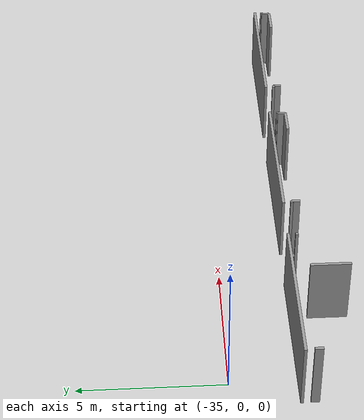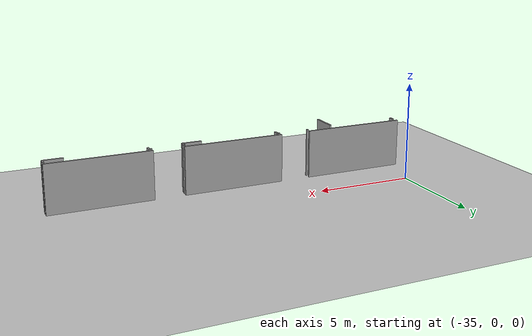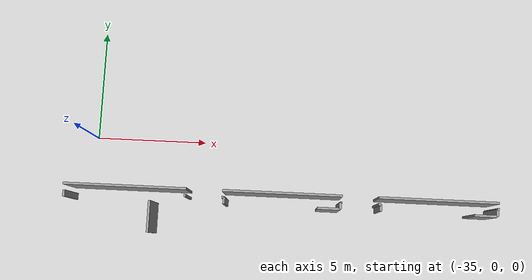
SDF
<sdf version="1.6">
 <world name="default">
  <model name="ground_plane">
   <static>1</static>
   <link name="link">
    <collision name="collision">
     <geometry><plane><normal>0 0 1</normal><size>100 100</size></plane></geometry>
     <surface><friction><ode><mu>100</mu><mu2>50</mu2></ode></friction></surface>
    </collision>
    <visual name="visual">
     <cast_shadows>0</cast_shadows>
     <geometry><plane><normal>0 0 1</normal><size>100 100</size></plane></geometry>
     <material>
      <script><uri>file://media/materials/scripts/gazebo.material</uri><name>Gazebo/Grey</name></script>
     </material>
    </visual>
   </link>
  </model>
  <model name="50045369">
   <static>1</static>
   <link name="Wall_5">
    <collision name="Wall_5_Collision">
     <geometry><box><size>0.286740173493 0.1 2.5</size></box></geometry>
     <pose>0.143370086747 0 1.25 0 0 0</pose>
    </collision>
    <visual name="Wall_5_Visual">
     <pose>0.143370086747 0 1.25 0 0 0</pose>
     <geometry><box><size>0.286740173493 0.1 2.5</size></box></geometry>
     <material>
      <script><uri>file://media/materials/scripts/gazebo.material</uri><name>Gazebo/Grey</name></script>
      <ambient>1 1 1 1</ambient>
     </material>
    </visual>
    <pose>10.128689905 -24.5073877538 0 0 0 -1.57079632679</pose>
   </link>
   <link name="Wall_7">
    <collision name="Wall_7_Collision">
     <geometry><box><size>1.38375011916 0.1 2.5</size></box></geometry>
     <pose>0.691875059579 0 1.25 0 0 0</pose>
    </collision>
    <visual name="Wall_7_Visual">
     <pose>0.691875059579 0 1.25 0 0 0</pose>
     <geometry><box><size>1.38375011916 0.1 2.5</size></box></geometry>
     <material>
      <script><uri>file://media/materials/scripts/gazebo.material</uri><name>Gazebo/Grey</name></script>
      <ambient>1 1 1 1</ambient>
     </material>
    </visual>
    <pose>13.873089511 -24.7941279273 0 0 0 -1.57079632679</pose>
   </link>
   <link name="Wall_22">
    <collision name="Wall_22_Collision">
     <geometry><box><size>0.0939277430015 0.1 2.5</size></box></geometry>
     <pose>0.0469638715007 0 1.25 0 0 0</pose>
    </collision>
    <visual name="Wall_22_Visual">
     <pose>0.0469638715007 0 1.25 0 0 0</pose>
     <geometry><box><size>0.0939277430015 0.1 2.5</size></box></geometry>
     <material>
      <script><uri>file://media/materials/scripts/gazebo.material</uri><name>Gazebo/Grey</name></script>
      <ambient>1 1 1 1</ambient>
     </material>
    </visual>
    <pose>15.3543262051 -24.5117091926 0 0 0 0.0</pose>
   </link>
   <link name="Wall_23">
    <collision name="Wall_23_Collision">
     <geometry><box><size>0.104477137682 0.1 2.5</size></box></geometry>
     <pose>0.0522385688412 0 1.25 0 0 0</pose>
    </collision>
    <visual name="Wall_23_Visual">
     <pose>0.0522385688412 0 1.25 0 0 0</pose>
     <geometry><box><size>0.104477137682 0.1 2.5</size></box></geometry>
     <material>
      <script><uri>file://media/materials/scripts/gazebo.material</uri><name>Gazebo/Grey</name></script>
      <ambient>1 1 1 1</ambient>
     </material>
    </visual>
    <pose>17.0051158209 -24.5117091926 0 0 0 0.0</pose>
   </link>
   <link name="Wall_24">
    <collision name="Wall_24_Collision">
     <geometry><box><size>0.292459724826 0.1 2.5</size></box></geometry>
     <pose>0.146229862413 0 1.25 0 0 0</pose>
    </collision>
    <visual name="Wall_24_Visual">
     <pose>0.146229862413 0 1.25 0 0 0</pose>
     <geometry><box><size>0.292459724826 0.1 2.5</size></box></geometry>
     <material>
      <script><uri>file://media/materials/scripts/gazebo.material</uri><name>Gazebo/Grey</name></script>
      <ambient>1 1 1 1</ambient>
     </material>
    </visual>
    <pose>17.1095929586 -24.5117091926 0 0 0 -1.57079632679</pose>
   </link>
   <link name="Wall_32">
    <collision name="Wall_32_Collision">
     <geometry><box><size>0.99558323536 0.1 2.5</size></box></geometry>
     <pose>0.49779161768 0 1.25 0 0 0</pose>
    </collision>
    <visual name="Wall_32_Visual">
     <pose>0.49779161768 0 1.25 0 0 0</pose>
     <geometry><box><size>0.99558323536 0.1 2.5</size></box></geometry>
     <material>
      <script><uri>file://media/materials/scripts/gazebo.material</uri><name>Gazebo/Grey</name></script>
      <ambient>1 1 1 1</ambient>
     </material>
    </visual>
    <pose>21.1886498681 -24.794763433 0 0 0 0.0</pose>
   </link>
   <link name="Wall_33">
    <collision name="Wall_33_Collision">
     <geometry><box><size>0.283435543834 0.1 2.5</size></box></geometry>
     <pose>0.141717771917 0 1.25 0 0 0</pose>
    </collision>
    <visual name="Wall_33_Visual">
     <pose>0.141717771917 0 1.25 0 0 0</pose>
     <geometry><box><size>0.283435543834 0.1 2.5</size></box></geometry>
     <material>
      <script><uri>file://media/materials/scripts/gazebo.material</uri><name>Gazebo/Grey</name></script>
      <ambient>1 1 1 1</ambient>
     </material>
    </visual>
    <pose>22.1842331035 -24.794763433 0 0 0 1.57079632679</pose>
   </link>
   <link name="Wall_34">
    <collision name="Wall_34_Collision">
     <geometry><box><size>0.0798195163802 0.1 2.5</size></box></geometry>
     <pose>0.0399097581901 0 1.25 0 0 0</pose>
    </collision>
    <visual name="Wall_34_Visual">
     <pose>0.0399097581901 0 1.25 0 0 0</pose>
     <geometry><box><size>0.0798195163802 0.1 2.5</size></box></geometry>
     <material>
      <script><uri>file://media/materials/scripts/gazebo.material</uri><name>Gazebo/Grey</name></script>
      <ambient>1 1 1 1</ambient>
     </material>
    </visual>
    <pose>22.1842331035 -24.5113278892 0 0 0 0.0</pose>
   </link>
   <link name="Wall_35">
    <collision name="Wall_35_Collision">
     <geometry><box><size>0.115407835785 0.1 2.5</size></box></geometry>
     <pose>0.0577039178927 0 1.25 0 0 0</pose>
    </collision>
    <visual name="Wall_35_Visual">
     <pose>0.0577039178927 0 1.25 0 0 0</pose>
     <geometry><box><size>0.115407835785 0.1 2.5</size></box></geometry>
     <material>
      <script><uri>file://media/materials/scripts/gazebo.material</uri><name>Gazebo/Grey</name></script>
      <ambient>1 1 1 1</ambient>
     </material>
    </visual>
    <pose>23.8354040228 -24.5113278892 0 0 0 0.0</pose>
   </link>
   <link name="Wall_36">
    <collision name="Wall_36_Collision">
     <geometry><box><size>0.287375679197 0.1 2.5</size></box></geometry>
     <pose>0.143687839598 0 1.25 0 0 0</pose>
    </collision>
    <visual name="Wall_36_Visual">
     <pose>0.143687839598 0 1.25 0 0 0</pose>
     <geometry><box><size>0.287375679197 0.1 2.5</size></box></geometry>
     <material>
      <script><uri>file://media/materials/scripts/gazebo.material</uri><name>Gazebo/Grey</name></script>
      <ambient>1 1 1 1</ambient>
     </material>
    </visual>
    <pose>23.9508118585 -24.5113278892 0 0 0 -1.57079632679</pose>
   </link>
   <link name="Wall_44">
    <collision name="Wall_44_Collision">
     <geometry><box><size>1.00473451749 0.1 2.5</size></box></geometry>
     <pose>0.502367258746 0 1.25 0 0 0</pose>
    </collision>
    <visual name="Wall_44_Visual">
     <pose>0.502367258746 0 1.25 0 0 0</pose>
     <geometry><box><size>1.00473451749 0.1 2.5</size></box></geometry>
     <material>
      <script><uri>file://media/materials/scripts/gazebo.material</uri><name>Gazebo/Grey</name></script>
      <ambient>1 1 1 1</ambient>
     </material>
    </visual>
    <pose>28.0123288107 -24.7987035684 0 0 0 0.0</pose>
   </link>
   <link name="Wall_45">
    <collision name="Wall_45_Collision">
     <geometry><box><size>0.307711861714 0.1 2.5</size></box></geometry>
     <pose>0.153855930857 0 1.25 0 0 0</pose>
    </collision>
    <visual name="Wall_45_Visual">
     <pose>0.153855930857 0 1.25 0 0 0</pose>
     <geometry><box><size>0.307711861714 0.1 2.5</size></box></geometry>
     <material>
      <script><uri>file://media/materials/scripts/gazebo.material</uri><name>Gazebo/Grey</name></script>
      <ambient>1 1 1 1</ambient>
     </material>
    </visual>
    <pose>29.0170633281 -24.7987035684 0 0 0 1.57079632679</pose>
   </link>
   <link name="Wall_46">
    <collision name="Wall_46_Collision">
     <geometry><box><size>0.0824886403355 0.1 2.5</size></box></geometry>
     <pose>0.0412443201678 0 1.25 0 0 0</pose>
    </collision>
    <visual name="Wall_46_Visual">
     <pose>0.0412443201678 0 1.25 0 0 0</pose>
     <geometry><box><size>0.0824886403355 0.1 2.5</size></box></geometry>
     <material>
      <script><uri>file://media/materials/scripts/gazebo.material</uri><name>Gazebo/Grey</name></script>
      <ambient>1 1 1 1</ambient>
     </material>
    </visual>
    <pose>29.0170633281 -24.4909917067 0 0 0 0.0</pose>
   </link>
   <link name="Wall_249">
    <collision name="Wall_249_Collision">
     <geometry><box><size>5.24139684154 0.1 2.5</size></box></geometry>
     <pose>2.62069842077 0 1.25 0 0 0</pose>
    </collision>
    <visual name="Wall_249_Visual">
     <pose>2.62069842077 0 1.25 0 0 0</pose>
     <geometry><box><size>5.24139684154 0.1 2.5</size></box></geometry>
     <material>
      <script><uri>file://media/materials/scripts/gazebo.material</uri><name>Gazebo/Grey</name></script>
      <ambient>1 1 1 1</ambient>
     </material>
    </visual>
    <pose>29.1008229799 -24.2161990404 0 0 0 3.14159265359</pose>
   </link>
   <link name="Wall_250">
    <collision name="Wall_250_Collision">
     <geometry><box><size>5.2494042134 0.1 2.5</size></box></geometry>
     <pose>2.6247021067 0 1.25 0 0 0</pose>
    </collision>
    <visual name="Wall_250_Visual">
     <pose>2.6247021067 0 1.25 0 0 0</pose>
     <geometry><box><size>5.2494042134 0.1 2.5</size></box></geometry>
     <material>
      <script><uri>file://media/materials/scripts/gazebo.material</uri><name>Gazebo/Grey</name></script>
      <ambient>1 1 1 1</ambient>
     </material>
    </visual>
    <pose>22.2763814305 -24.2161990404 0 0 0 3.14159265359</pose>
   </link>
   <link name="Wall_251">
    <collision name="Wall_251_Collision">
     <geometry><box><size>5.38718184996 0.1 2.5</size></box></geometry>
     <pose>2.69359092498 0 1.25 0 0 0</pose>
    </collision>
    <visual name="Wall_251_Visual">
     <pose>2.69359092498 0 1.25 0 0 0</pose>
     <geometry><box><size>5.38718184996 0.1 2.5</size></box></geometry>
     <material>
      <script><uri>file://media/materials/scripts/gazebo.material</uri><name>Gazebo/Grey</name></script>
      <ambient>1 1 1 1</ambient>
     </material>
    </visual>
    <pose>15.4482539481 -24.2161990404 0 0 0 3.14159265359</pose>
   </link>
   <pose>-45.95 21.8978774109 0 0 0 0</pose>
  </model>
 </world>
</sdf>
